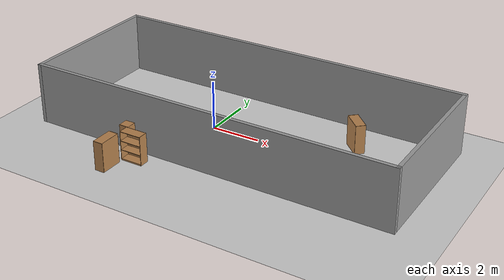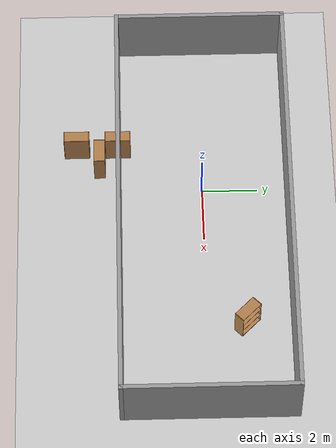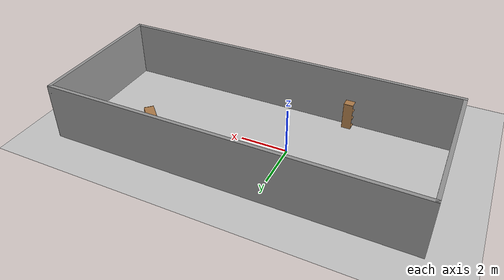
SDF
<sdf version="1.6">
 <world name="default">
  <include><uri>model://ground_plane</uri></include>
  <include><uri>model://sun</uri></include>
  <include><uri>model://building</uri></include>
  <model name="bookshelf">
   <static>1</static>
   <link name="link">
    <inertial><mass>1</mass></inertial>
    <collision name="back">
     <pose>0 0.005 0.6 0 -0 0</pose>
     <geometry><box><size>0.9 0.01 1.2</size></box></geometry>
    </collision>
    <visual name="visual1">
     <pose>0 0.005 0.6 0 -0 0</pose>
     <geometry><box><size>0.9 0.01 1.2</size></box></geometry>
     <material>
      <script><uri>file://media/materials/scripts/gazebo.material</uri><name>Gazebo/Wood</name></script>
     </material>
    </visual>
    <collision name="left_side">
     <pose>0.45 -0.195 0.6 0 -0 0</pose>
     <geometry><box><size>0.02 0.4 1.2</size></box></geometry>
    </collision>
    <visual name="visual2">
     <pose>0.45 -0.195 0.6 0 -0 0</pose>
     <geometry><box><size>0.02 0.4 1.2</size></box></geometry>
     <material>
      <script><uri>file://media/materials/scripts/gazebo.material</uri><name>Gazebo/Wood</name></script>
     </material>
    </visual>
    <collision name="right_side">
     <pose>-0.45 -0.195 0.6 0 -0 0</pose>
     <geometry><box><size>0.02 0.4 1.2</size></box></geometry>
    </collision>
    <visual name="visual3">
     <pose>-0.45 -0.195 0.6 0 -0 0</pose>
     <geometry><box><size>0.02 0.4 1.2</size></box></geometry>
     <material>
      <script><uri>file://media/materials/scripts/gazebo.material</uri><name>Gazebo/Wood</name></script>
     </material>
    </visual>
    <collision name="bottom">
     <pose>0 -0.195 0.03 0 -0 0</pose>
     <geometry><box><size>0.88 0.4 0.06</size></box></geometry>
    </collision>
    <visual name="visual4">
     <pose>0 -0.195 0.03 0 -0 0</pose>
     <geometry><box><size>0.88 0.4 0.06</size></box></geometry>
     <material>
      <script><uri>file://media/materials/scripts/gazebo.material</uri><name>Gazebo/Wood</name></script>
     </material>
    </visual>
    <collision name="top">
     <pose>0 -0.195 1.19 0 -0 0</pose>
     <geometry><box><size>0.88 0.4 0.02</size></box></geometry>
    </collision>
    <visual name="visual5">
     <pose>0 -0.195 1.19 0 -0 0</pose>
     <geometry><box><size>0.88 0.4 0.02</size></box></geometry>
     <material>
      <script><uri>file://media/materials/scripts/gazebo.material</uri><name>Gazebo/Wood</name></script>
     </material>
    </visual>
    <collision name="low_shelf">
     <pose>0 -0.195 0.43 0 -0 0</pose>
     <geometry><box><size>0.88 0.4 0.02</size></box></geometry>
    </collision>
    <visual name="visual6">
     <pose>0 -0.195 0.43 0 -0 0</pose>
     <geometry><box><size>0.88 0.4 0.02</size></box></geometry>
     <material>
      <script><uri>file://media/materials/scripts/gazebo.material</uri><name>Gazebo/Wood</name></script>
     </material>
    </visual>
    <collision name="high_shelf">
     <pose>0 -0.195 0.8 0 -0 0</pose>
     <geometry><box><size>0.88 0.4 0.02</size></box></geometry>
    </collision>
    <visual name="visual7">
     <pose>0 -0.195 0.8 0 -0 0</pose>
     <geometry><box><size>0.88 0.4 0.02</size></box></geometry>
     <material>
      <script><uri>file://media/materials/scripts/gazebo.material</uri><name>Gazebo/Wood</name></script>
     </material>
    </visual>
   </link>
   <pose>-1.10882 -3.51925 0 0 -0 0</pose>
  </model>
  <model name="bookshelf_clone">
   <static>1</static>
   <link name="link">
    <inertial><mass>1</mass></inertial>
    <collision name="back">
     <pose>0 0.005 0.6 0 -0 0</pose>
     <geometry><box><size>0.9 0.01 1.2</size></box></geometry>
    </collision>
    <visual name="visual1">
     <pose>0 0.005 0.6 0 -0 0</pose>
     <geometry><box><size>0.9 0.01 1.2</size></box></geometry>
     <material>
      <script><uri>file://media/materials/scripts/gazebo.material</uri><name>Gazebo/Wood</name></script>
     </material>
    </visual>
    <collision name="left_side">
     <pose>0.45 -0.195 0.6 0 -0 0</pose>
     <geometry><box><size>0.02 0.4 1.2</size></box></geometry>
    </collision>
    <visual name="visual2">
     <pose>0.45 -0.195 0.6 0 -0 0</pose>
     <geometry><box><size>0.02 0.4 1.2</size></box></geometry>
     <material>
      <script><uri>file://media/materials/scripts/gazebo.material</uri><name>Gazebo/Wood</name></script>
     </material>
    </visual>
    <collision name="right_side">
     <pose>-0.45 -0.195 0.6 0 -0 0</pose>
     <geometry><box><size>0.02 0.4 1.2</size></box></geometry>
    </collision>
    <visual name="visual3">
     <pose>-0.45 -0.195 0.6 0 -0 0</pose>
     <geometry><box><size>0.02 0.4 1.2</size></box></geometry>
     <material>
      <script><uri>file://media/materials/scripts/gazebo.material</uri><name>Gazebo/Wood</name></script>
     </material>
    </visual>
    <collision name="bottom">
     <pose>0 -0.195 0.03 0 -0 0</pose>
     <geometry><box><size>0.88 0.4 0.06</size></box></geometry>
    </collision>
    <visual name="visual4">
     <pose>0 -0.195 0.03 0 -0 0</pose>
     <geometry><box><size>0.88 0.4 0.06</size></box></geometry>
     <material>
      <script><uri>file://media/materials/scripts/gazebo.material</uri><name>Gazebo/Wood</name></script>
     </material>
    </visual>
    <collision name="top">
     <pose>0 -0.195 1.19 0 -0 0</pose>
     <geometry><box><size>0.88 0.4 0.02</size></box></geometry>
    </collision>
    <visual name="visual5">
     <pose>0 -0.195 1.19 0 -0 0</pose>
     <geometry><box><size>0.88 0.4 0.02</size></box></geometry>
     <material>
      <script><uri>file://media/materials/scripts/gazebo.material</uri><name>Gazebo/Wood</name></script>
     </material>
    </visual>
    <collision name="low_shelf">
     <pose>0 -0.195 0.43 0 -0 0</pose>
     <geometry><box><size>0.88 0.4 0.02</size></box></geometry>
    </collision>
    <visual name="visual6">
     <pose>0 -0.195 0.43 0 -0 0</pose>
     <geometry><box><size>0.88 0.4 0.02</size></box></geometry>
     <material>
      <script><uri>file://media/materials/scripts/gazebo.material</uri><name>Gazebo/Wood</name></script>
     </material>
    </visual>
    <collision name="high_shelf">
     <pose>0 -0.195 0.8 0 -0 0</pose>
     <geometry><box><size>0.88 0.4 0.02</size></box></geometry>
    </collision>
    <visual name="visual7">
     <pose>0 -0.195 0.8 0 -0 0</pose>
     <geometry><box><size>0.88 0.4 0.02</size></box></geometry>
     <material>
      <script><uri>file://media/materials/scripts/gazebo.material</uri><name>Gazebo/Wood</name></script>
     </material>
    </visual>
   </link>
   <pose>5.35472 1.30613 0 0 -0 2.35</pose>
  </model>
  <model name="bookshelf_clone_0">
   <static>1</static>
   <link name="link">
    <inertial><mass>1</mass></inertial>
    <collision name="back">
     <pose>0 0.005 0.6 0 -0 0</pose>
     <geometry><box><size>0.9 0.01 1.2</size></box></geometry>
    </collision>
    <visual name="visual1">
     <pose>0 0.005 0.6 0 -0 0</pose>
     <geometry><box><size>0.9 0.01 1.2</size></box></geometry>
     <material>
      <script><uri>file://media/materials/scripts/gazebo.material</uri><name>Gazebo/Wood</name></script>
     </material>
    </visual>
    <collision name="left_side">
     <pose>0.45 -0.195 0.6 0 -0 0</pose>
     <geometry><box><size>0.02 0.4 1.2</size></box></geometry>
    </collision>
    <visual name="visual2">
     <pose>0.45 -0.195 0.6 0 -0 0</pose>
     <geometry><box><size>0.02 0.4 1.2</size></box></geometry>
     <material>
      <script><uri>file://media/materials/scripts/gazebo.material</uri><name>Gazebo/Wood</name></script>
     </material>
    </visual>
    <collision name="right_side">
     <pose>-0.45 -0.195 0.6 0 -0 0</pose>
     <geometry><box><size>0.02 0.4 1.2</size></box></geometry>
    </collision>
    <visual name="visual3">
     <pose>-0.45 -0.195 0.6 0 -0 0</pose>
     <geometry><box><size>0.02 0.4 1.2</size></box></geometry>
     <material>
      <script><uri>file://media/materials/scripts/gazebo.material</uri><name>Gazebo/Wood</name></script>
     </material>
    </visual>
    <collision name="bottom">
     <pose>0 -0.195 0.03 0 -0 0</pose>
     <geometry><box><size>0.88 0.4 0.06</size></box></geometry>
    </collision>
    <visual name="visual4">
     <pose>0 -0.195 0.03 0 -0 0</pose>
     <geometry><box><size>0.88 0.4 0.06</size></box></geometry>
     <material>
      <script><uri>file://media/materials/scripts/gazebo.material</uri><name>Gazebo/Wood</name></script>
     </material>
    </visual>
    <collision name="top">
     <pose>0 -0.195 1.19 0 -0 0</pose>
     <geometry><box><size>0.88 0.4 0.02</size></box></geometry>
    </collision>
    <visual name="visual5">
     <pose>0 -0.195 1.19 0 -0 0</pose>
     <geometry><box><size>0.88 0.4 0.02</size></box></geometry>
     <material>
      <script><uri>file://media/materials/scripts/gazebo.material</uri><name>Gazebo/Wood</name></script>
     </material>
    </visual>
    <collision name="low_shelf">
     <pose>0 -0.195 0.43 0 -0 0</pose>
     <geometry><box><size>0.88 0.4 0.02</size></box></geometry>
    </collision>
    <visual name="visual6">
     <pose>0 -0.195 0.43 0 -0 0</pose>
     <geometry><box><size>0.88 0.4 0.02</size></box></geometry>
     <material>
      <script><uri>file://media/materials/scripts/gazebo.material</uri><name>Gazebo/Wood</name></script>
     </material>
    </visual>
    <collision name="high_shelf">
     <pose>0 -0.195 0.8 0 -0 0</pose>
     <geometry><box><size>0.88 0.4 0.02</size></box></geometry>
    </collision>
    <visual name="visual7">
     <pose>0 -0.195 0.8 0 -0 0</pose>
     <geometry><box><size>0.88 0.4 0.02</size></box></geometry>
     <material>
      <script><uri>file://media/materials/scripts/gazebo.material</uri><name>Gazebo/Wood</name></script>
     </material>
    </visual>
   </link>
   <pose>-1.50877 -3.04602 0 0 0 -1.57</pose>
  </model>
  <gravity>0 0 -9.8</gravity>
  <magnetic_field>6e-06 2.3e-05 -4.2e-05</magnetic_field>
  <atmosphere type="adiabatic"/>
  <physics name="default_physics" default="0" type="ode">
   <max_step_size>0.001</max_step_size>
   <real_time_factor>1</real_time_factor>
   <real_time_update_rate>1000</real_time_update_rate>
  </physics>
  <scene><ambient>0.4 0.4 0.4 1</ambient><background>0.7 0.7 0.7 1</background><shadows>1</shadows></scene>
  <spherical_coordinates>
   <surface_model>EARTH_WGS84</surface_model>
   <latitude_deg>0</latitude_deg>
   <longitude_deg>0</longitude_deg>
   <elevation>0</elevation>
   <heading_deg>0</heading_deg>
  </spherical_coordinates>
  <model name="bookshelf_clone_0_clone">
   <static>1</static>
   <link name="link">
    <inertial><mass>1</mass></inertial>
    <collision name="back">
     <pose>0 0.005 0.6 0 -0 0</pose>
     <geometry><box><size>0.9 0.01 1.2</size></box></geometry>
    </collision>
    <visual name="visual1">
     <pose>0 0.005 0.6 0 -0 0</pose>
     <geometry><box><size>0.9 0.01 1.2</size></box></geometry>
     <material>
      <script><uri>file://media/materials/scripts/gazebo.material</uri><name>Gazebo/Wood</name></script>
     </material>
    </visual>
    <collision name="left_side">
     <pose>0.45 -0.195 0.6 0 -0 0</pose>
     <geometry><box><size>0.02 0.4 1.2</size></box></geometry>
    </collision>
    <visual name="visual2">
     <pose>0.45 -0.195 0.6 0 -0 0</pose>
     <geometry><box><size>0.02 0.4 1.2</size></box></geometry>
     <material>
      <script><uri>file://media/materials/scripts/gazebo.material</uri><name>Gazebo/Wood</name></script>
     </material>
    </visual>
    <collision name="right_side">
     <pose>-0.45 -0.195 0.6 0 -0 0</pose>
     <geometry><box><size>0.02 0.4 1.2</size></box></geometry>
    </collision>
    <visual name="visual3">
     <pose>-0.45 -0.195 0.6 0 -0 0</pose>
     <geometry><box><size>0.02 0.4 1.2</size></box></geometry>
     <material>
      <script><uri>file://media/materials/scripts/gazebo.material</uri><name>Gazebo/Wood</name></script>
     </material>
    </visual>
    <collision name="bottom">
     <pose>0 -0.195 0.03 0 -0 0</pose>
     <geometry><box><size>0.88 0.4 0.06</size></box></geometry>
    </collision>
    <visual name="visual4">
     <pose>0 -0.195 0.03 0 -0 0</pose>
     <geometry><box><size>0.88 0.4 0.06</size></box></geometry>
     <material>
      <script><uri>file://media/materials/scripts/gazebo.material</uri><name>Gazebo/Wood</name></script>
     </material>
    </visual>
    <collision name="top">
     <pose>0 -0.195 1.19 0 -0 0</pose>
     <geometry><box><size>0.88 0.4 0.02</size></box></geometry>
    </collision>
    <visual name="visual5">
     <pose>0 -0.195 1.19 0 -0 0</pose>
     <geometry><box><size>0.88 0.4 0.02</size></box></geometry>
     <material>
      <script><uri>file://media/materials/scripts/gazebo.material</uri><name>Gazebo/Wood</name></script>
     </material>
    </visual>
    <collision name="low_shelf">
     <pose>0 -0.195 0.43 0 -0 0</pose>
     <geometry><box><size>0.88 0.4 0.02</size></box></geometry>
    </collision>
    <visual name="visual6">
     <pose>0 -0.195 0.43 0 -0 0</pose>
     <geometry><box><size>0.88 0.4 0.02</size></box></geometry>
     <material>
      <script><uri>file://media/materials/scripts/gazebo.material</uri><name>Gazebo/Wood</name></script>
     </material>
    </visual>
    <collision name="high_shelf">
     <pose>0 -0.195 0.8 0 -0 0</pose>
     <geometry><box><size>0.88 0.4 0.02</size></box></geometry>
    </collision>
    <visual name="visual7">
     <pose>0 -0.195 0.8 0 -0 0</pose>
     <geometry><box><size>0.88 0.4 0.02</size></box></geometry>
     <material>
      <script><uri>file://media/materials/scripts/gazebo.material</uri><name>Gazebo/Wood</name></script>
     </material>
    </visual>
   </link>
   <pose>-1.52228 -4.54061 0 0 0 -1.57</pose>
  </model>
 </world>
</sdf>

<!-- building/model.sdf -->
<sdf version='1.6'>
  <model name='building'>
    <pose frame=''>1.45438 0.032509 0 0 -0 0</pose>
    <link name='Wall_49'>
      <collision name='Wall_49_Collision'>
        <geometry>
          <box>
            <size>6.21482 0.15 2.5</size>
          </box>
        </geometry>
        <pose frame=''>0 0 1.25 0 -0 0</pose>
      </collision>
      <visual name='Wall_49_Visual'>
        <pose frame=''>0 0 1.25 0 -0 0</pose>
        <geometry>
          <box>
            <size>6.21482 0.15 2.5</size>
          </box>
        </geometry>
        <material>
          <script>
            <uri>file://media/materials/scripts/gazebo.material</uri>
            <name>Gazebo/Grey</name>
          </script>
          <ambient>1 1 1 1</ambient>
        </material>
        <meta>
          <layer>0</layer>
        </meta>
      </visual>
      <pose frame=''>-7.55 -0.017589 0 0 -0 1.5708</pose>
    </link>
    <link name='Wall_51'>
      <collision name='Wall_51_Collision'>
        <geometry>
          <box>
            <size>15.25 0.15 2.5</size>
          </box>
        </geometry>
        <pose frame=''>0 0 1.25 0 -0 0</pose>
      </collision>
      <visual name='Wall_51_Visual'>
        <pose frame=''>0 0 1.25 0 -0 0</pose>
        <geometry>
          <box>
            <size>15.25 0.15 2.5</size>
          </box>
        </geometry>
        <material>
          <script>
            <uri>file://media/materials/scripts/gazebo.material</uri>
            <name>Gazebo/Grey</name>
          </script>
          <ambient>1 1 1 1</ambient>
        </material>
        <meta>
          <layer>0</layer>
        </meta>
      </visual>
      <pose frame=''>-0 3.05 0 0 -0 0</pose>
    </link>
    <link name='Wall_53'>
      <collision name='Wall_53_Collision'>
        <geometry>
          <box>
            <size>15.25 0.15 2.5</size>
          </box>
        </geometry>
        <pose frame=''>0 0 1.25 0 -0 0</pose>
      </collision>
      <visual name='Wall_53_Visual'>
        <pose frame=''>0 0 1.25 0 -0 0</pose>
        <geometry>
          <box>
            <size>15.25 0.15 2.5</size>
          </box>
        </geometry>
        <material>
          <script>
            <uri>file://media/materials/scripts/gazebo.material</uri>
            <name>Gazebo/Grey</name>
          </script>
          <ambient>1 1 1 1</ambient>
        </material>
        <meta>
          <layer>0</layer>
        </meta>
      </visual>
      <pose frame=''>-0 -3.05 0 0 -0 3.14159</pose>
    </link>
    <link name='Wall_58'>
      <collision name='Wall_58_Collision'>
        <geometry>
          <box>
            <size>6.25 0.15 2.5</size>
          </box>
        </geometry>
        <pose frame=''>0 0 1.25 0 -0 0</pose>
      </collision>
      <visual name='Wall_58_Visual'>
        <pose frame=''>0 0 1.25 0 -0 0</pose>
        <geometry>
          <box>
            <size>6.25 0.15 2.5</size>
          </box>
        </geometry>
        <material>
          <script>
            <uri>file://media/materials/scripts/gazebo.material</uri>
            <name>Gazebo/Grey</name>
          </script>
          <ambient>1 1 1 1</ambient>
        </material>
        <meta>
          <layer>0</layer>
        </meta>
      </visual>
      <pose frame=''>7.55 -0 0 0 -0 -1.5708</pose>
    </link>
    <static>1</static>
  </model>
</sdf>
